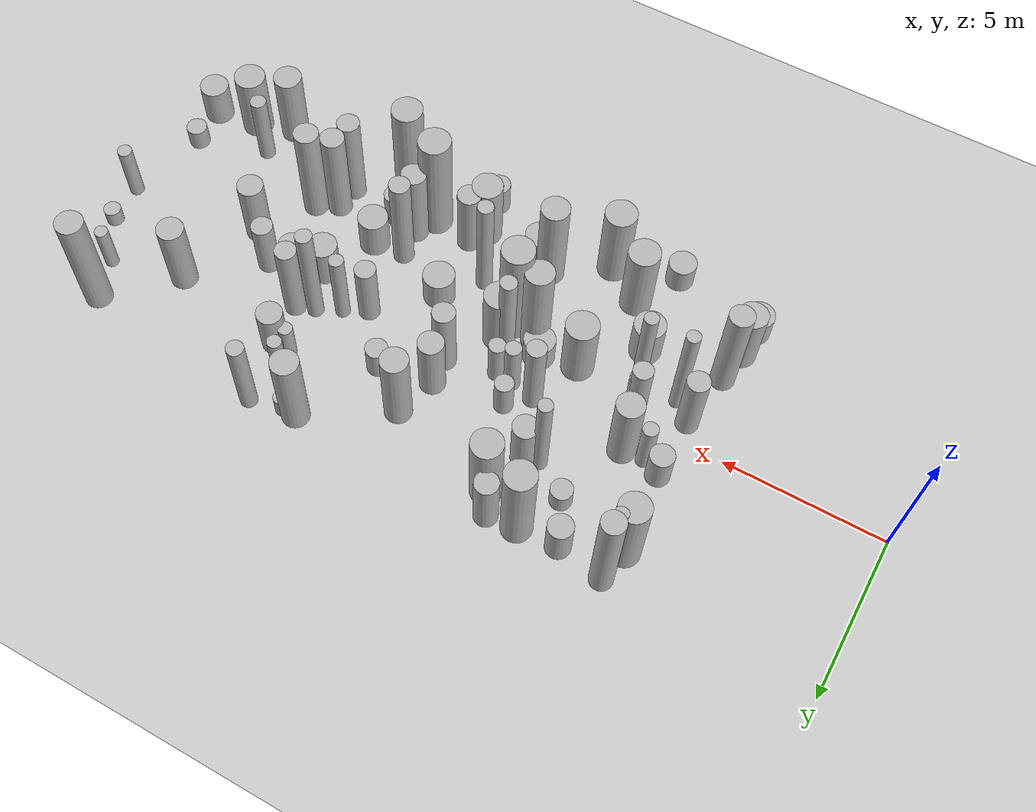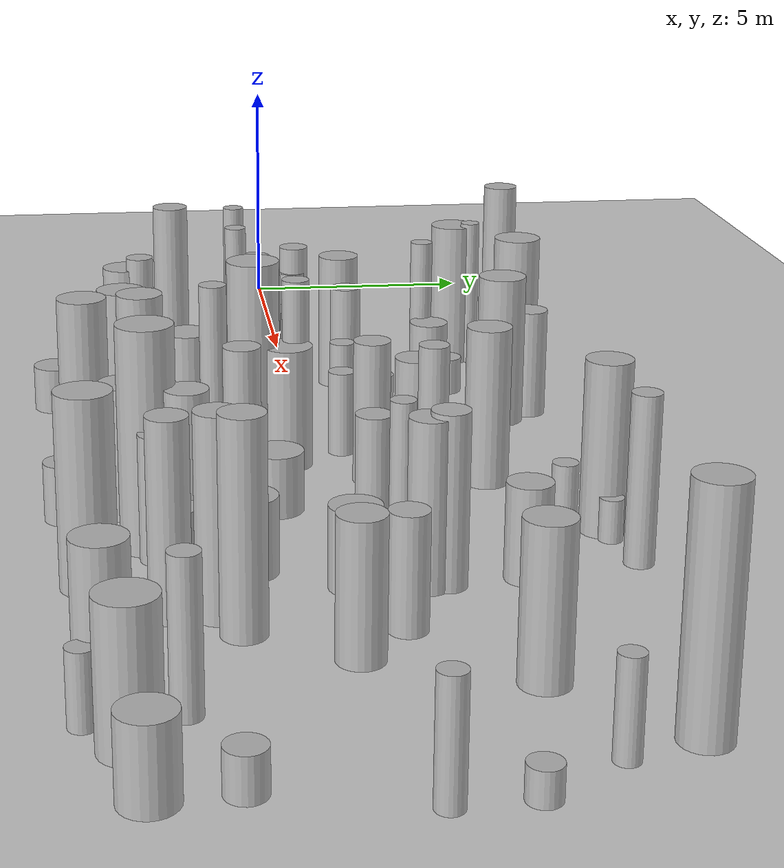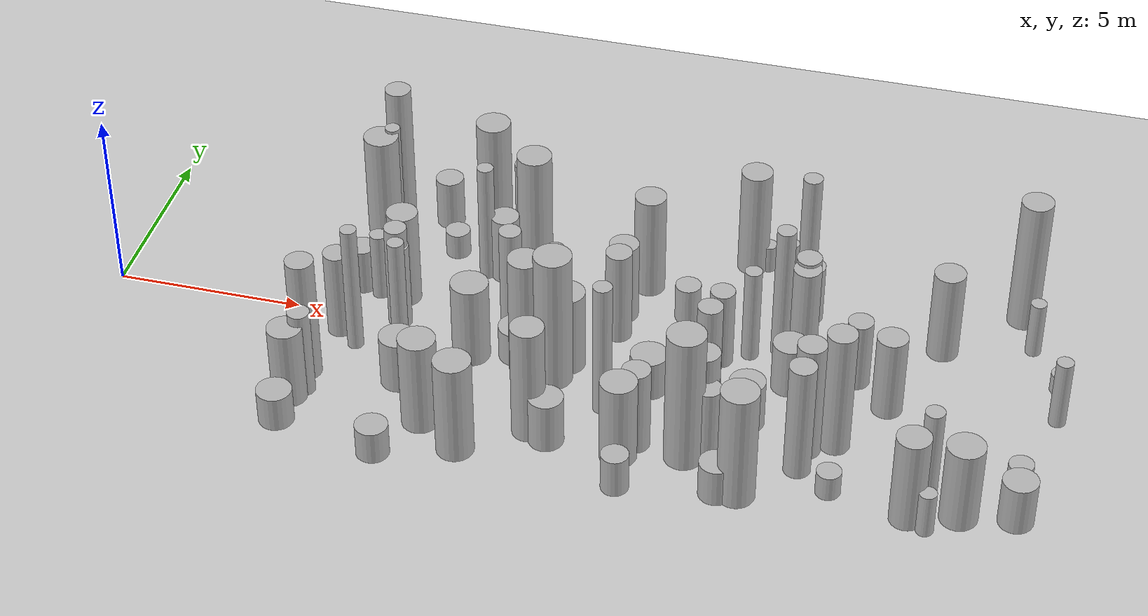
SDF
<sdf version="1.4">
 <world name="default">
  <include><uri>model://ground_plane</uri></include>
  <include><uri>model://sun</uri></include>
  <model name="forest">
   <static>true</static>
   <link name="cylinder5">
    <pose>6.095095211247049 -2.422346213950859 1.8108840715719619 0 0 0</pose>
    <visual name="visual">
     <geometry>
      <cylinder><radius>0.37031109077982693</radius><length>3.6217681431439237</length></cylinder>
     </geometry>
    </visual>
    <collision name="collision">
     <geometry>
      <cylinder><radius>0.37031109077982693</radius><length>3.6217681431439237</length></cylinder>
     </geometry>
     <max_contacts>0</max_contacts>
    </collision>
   </link>
   <link name="cylinder6">
    <pose>16.30455549652652 4.694991650789337 1.5752967482884006 0 0 0</pose>
    <visual name="visual">
     <geometry>
      <cylinder><radius>0.4186425243495191</radius><length>3.150593496576801</length></cylinder>
     </geometry>
    </visual>
    <collision name="collision">
     <geometry>
      <cylinder><radius>0.4186425243495191</radius><length>3.150593496576801</length></cylinder>
     </geometry>
     <max_contacts>0</max_contacts>
    </collision>
   </link>
   <link name="cylinder7">
    <pose>12.126960939428884 -0.2747560036739225 1.779856982656079 0 0 0</pose>
    <visual name="visual">
     <geometry>
      <cylinder><radius>0.2573544955763187</radius><length>3.559713965312158</length></cylinder>
     </geometry>
    </visual>
    <collision name="collision">
     <geometry>
      <cylinder><radius>0.2573544955763187</radius><length>3.559713965312158</length></cylinder>
     </geometry>
     <max_contacts>0</max_contacts>
    </collision>
   </link>
   <link name="cylinder18">
    <pose>9.476005156862094 2.567989246575573 1.771136329113 0 0 0</pose>
    <visual name="visual">
     <geometry><cylinder><radius>0.21846112876386714</radius><length>3.542272658226</length></cylinder></geometry>
    </visual>
    <collision name="collision">
     <geometry><cylinder><radius>0.21846112876386714</radius><length>3.542272658226</length></cylinder></geometry>
     <max_contacts>0</max_contacts>
    </collision>
   </link>
   <link name="cylinder20">
    <pose>9.98174227509422 -0.7284546494891488 1.1860617621199308 0 0 0</pose>
    <visual name="visual">
     <geometry>
      <cylinder><radius>0.4957982226751226</radius><length>2.3721235242398615</length></cylinder>
     </geometry>
    </visual>
    <collision name="collision">
     <geometry>
      <cylinder><radius>0.4957982226751226</radius><length>2.3721235242398615</length></cylinder>
     </geometry>
     <max_contacts>0</max_contacts>
    </collision>
   </link>
   <link name="cylinder22">
    <pose>17.75844524702019 4.9406119250586915 1.514483509496593 0 0 0</pose>
    <visual name="visual">
     <geometry>
      <cylinder><radius>0.2611316210934098</radius><length>3.028967018993186</length></cylinder>
     </geometry>
    </visual>
    <collision name="collision">
     <geometry>
      <cylinder><radius>0.2611316210934098</radius><length>3.028967018993186</length></cylinder>
     </geometry>
     <max_contacts>0</max_contacts>
    </collision>
   </link>
   <link name="cylinder24">
    <pose>16.97474772034049 1.04251455019953 1.388998019789471 0 0 0</pose>
    <visual name="visual">
     <geometry>
      <cylinder><radius>0.2256265079048133</radius><length>2.777996039578942</length></cylinder>
     </geometry>
    </visual>
    <collision name="collision">
     <geometry>
      <cylinder><radius>0.2256265079048133</radius><length>2.777996039578942</length></cylinder>
     </geometry>
     <max_contacts>0</max_contacts>
    </collision>
   </link>
   <link name="cylinder25">
    <pose>14.907421635599988 -3.0140926982769365 1.222793909276517 0 0 0</pose>
    <visual name="visual">
     <geometry>
      <cylinder><radius>0.3680840713682659</radius><length>2.445587818553034</length></cylinder>
     </geometry>
    </visual>
    <collision name="collision">
     <geometry>
      <cylinder><radius>0.3680840713682659</radius><length>2.445587818553034</length></cylinder>
     </geometry>
     <max_contacts>0</max_contacts>
    </collision>
   </link>
   <link name="cylinder29">
    <pose>18.137900436876656 2.9549398702739103 0.8520888014592398 0 0 0</pose>
    <visual name="visual">
     <geometry>
      <cylinder><radius>0.39659908892600876</radius><length>1.7041776029184796</length></cylinder>
     </geometry>
    </visual>
    <collision name="collision">
     <geometry>
      <cylinder><radius>0.39659908892600876</radius><length>1.7041776029184796</length></cylinder>
     </geometry>
     <max_contacts>0</max_contacts>
    </collision>
   </link>
   <link name="cylinder34">
    <pose>11.514855932610693 -0.9473922208191068 1.8160114090090107 0 0 0</pose>
    <visual name="visual">
     <geometry>
      <cylinder><radius>0.43567982473361944</radius><length>3.6320228180180214</length></cylinder>
     </geometry>
    </visual>
    <collision name="collision">
     <geometry>
      <cylinder><radius>0.43567982473361944</radius><length>3.6320228180180214</length></cylinder>
     </geometry>
     <max_contacts>0</max_contacts>
    </collision>
   </link>
   <link name="cylinder45">
    <pose>12.477127357572357 -0.45924616195239043 1.1842098432579775 0 0 0</pose>
    <visual name="visual">
     <geometry>
      <cylinder><radius>0.4751936288855037</radius><length>2.368419686515955</length></cylinder>
     </geometry>
    </visual>
    <collision name="collision">
     <geometry>
      <cylinder><radius>0.4751936288855037</radius><length>2.368419686515955</length></cylinder>
     </geometry>
     <max_contacts>0</max_contacts>
    </collision>
   </link>
   <link name="cylinder47">
    <pose>24.444030777441213 -3.407347500628516 0.6774231674197793 0 0 0</pose>
    <visual name="visual">
     <geometry>
      <cylinder><radius>0.44775015131962803</radius><length>1.3548463348395585</length></cylinder>
     </geometry>
    </visual>
    <collision name="collision">
     <geometry>
      <cylinder><radius>0.44775015131962803</radius><length>1.3548463348395585</length></cylinder>
     </geometry>
     <max_contacts>0</max_contacts>
    </collision>
   </link>
   <link name="cylinder52">
    <pose>7.635228746074446 1.0870725946404933 1.413383033654066 0 0 0</pose>
    <visual name="visual">
     <geometry>
      <cylinder><radius>0.41474855454471704</radius><length>2.826766067308132</length></cylinder>
     </geometry>
    </visual>
    <collision name="collision">
     <geometry>
      <cylinder><radius>0.41474855454471704</radius><length>2.826766067308132</length></cylinder>
     </geometry>
     <max_contacts>0</max_contacts>
    </collision>
   </link>
   <link name="cylinder54">
    <pose>16.28224763181415 0.6509675340185703 1.1512908590575814 0 0 0</pose>
    <visual name="visual">
     <geometry>
      <cylinder><radius>0.3228887253956194</radius><length>2.302581718115163</length></cylinder>
     </geometry>
    </visual>
    <collision name="collision">
     <geometry>
      <cylinder><radius>0.3228887253956194</radius><length>2.302581718115163</length></cylinder>
     </geometry>
     <max_contacts>0</max_contacts>
    </collision>
   </link>
   <link name="cylinder55">
    <pose>13.473698099883038 1.006953871160917 1.3632850253873994 0 0 0</pose>
    <visual name="visual">
     <geometry>
      <cylinder><radius>0.34761580975982925</radius><length>2.7265700507747987</length></cylinder>
     </geometry>
    </visual>
    <collision name="collision">
     <geometry>
      <cylinder><radius>0.34761580975982925</radius><length>2.7265700507747987</length></cylinder>
     </geometry>
     <max_contacts>0</max_contacts>
    </collision>
   </link>
   <link name="cylinder56">
    <pose>18.175802188430886 0.09654596366287116 0.7219304504183779 0 0 0</pose>
    <visual name="visual">
     <geometry>
      <cylinder><radius>0.45428353367251617</radius><length>1.4438609008367558</length></cylinder>
     </geometry>
    </visual>
    <collision name="collision">
     <geometry>
      <cylinder><radius>0.45428353367251617</radius><length>1.4438609008367558</length></cylinder>
     </geometry>
     <max_contacts>0</max_contacts>
    </collision>
   </link>
   <link name="cylinder58">
    <pose>9.955069784097688 2.6583486859823937 0.9913598653913777 0 0 0</pose>
    <visual name="visual">
     <geometry>
      <cylinder><radius>0.3821587422730991</radius><length>1.9827197307827553</length></cylinder>
     </geometry>
    </visual>
    <collision name="collision">
     <geometry>
      <cylinder><radius>0.3821587422730991</radius><length>1.9827197307827553</length></cylinder>
     </geometry>
     <max_contacts>0</max_contacts>
    </collision>
   </link>
   <link name="cylinder60">
    <pose>7.820291985153808 0.0696702242743763 1.2730377012281773 0 0 0</pose>
    <visual name="visual">
     <geometry>
      <cylinder><radius>0.29449439438048525</radius><length>2.5460754024563546</length></cylinder>
     </geometry>
    </visual>
    <collision name="collision">
     <geometry>
      <cylinder><radius>0.29449439438048525</radius><length>2.5460754024563546</length></cylinder>
     </geometry>
     <max_contacts>0</max_contacts>
    </collision>
   </link>
   <link name="cylinder62">
    <pose>6.194814364536061 3.8144096999039387 1.5415645126009914 0 0 0</pose>
    <visual name="visual">
     <geometry>
      <cylinder><radius>0.4681434991191864</radius><length>3.0831290252019827</length></cylinder>
     </geometry>
    </visual>
    <collision name="collision">
     <geometry>
      <cylinder><radius>0.4681434991191864</radius><length>3.0831290252019827</length></cylinder>
     </geometry>
     <max_contacts>0</max_contacts>
    </collision>
   </link>
   <link name="cylinder71">
    <pose>11.935221255808806 0.6405763827183133 0.826655675524236 0 0 0</pose>
    <visual name="visual">
     <geometry>
      <cylinder><radius>0.2604943909857404</radius><length>1.653311351048472</length></cylinder>
     </geometry>
    </visual>
    <collision name="collision">
     <geometry>
      <cylinder><radius>0.2604943909857404</radius><length>1.653311351048472</length></cylinder>
     </geometry>
     <max_contacts>0</max_contacts>
    </collision>
   </link>
   <link name="cylinder72">
    <pose>12.205963857380482 -3.213685060846325 1.6967089766937846 0 0 0</pose>
    <visual name="visual">
     <geometry>
      <cylinder><radius>0.4337033851453723</radius><length>3.3934179533875692</length></cylinder>
     </geometry>
    </visual>
    <collision name="collision">
     <geometry>
      <cylinder><radius>0.4337033851453723</radius><length>3.3934179533875692</length></cylinder>
     </geometry>
     <max_contacts>0</max_contacts>
    </collision>
   </link>
   <link name="cylinder73">
    <pose>15.072860414491757 2.146677233310906 0.5403019122151448 0 0 0</pose>
    <visual name="visual">
     <geometry>
      <cylinder><radius>0.34055995838630576</radius><length>1.0806038244302896</length></cylinder>
     </geometry>
    </visual>
    <collision name="collision">
     <geometry>
      <cylinder><radius>0.34055995838630576</radius><length>1.0806038244302896</length></cylinder>
     </geometry>
     <max_contacts>0</max_contacts>
    </collision>
   </link>
   <link name="cylinder77">
    <pose>6.413894477884785 4.16249851608033 1.5841606587794075 0 0 0</pose>
    <visual name="visual">
     <geometry>
      <cylinder><radius>0.20335564849784107</radius><length>3.168321317558815</length></cylinder>
     </geometry>
    </visual>
    <collision name="collision">
     <geometry>
      <cylinder><radius>0.20335564849784107</radius><length>3.168321317558815</length></cylinder>
     </geometry>
     <max_contacts>0</max_contacts>
    </collision>
   </link>
   <link name="cylinder80">
    <pose>18.984623782332037 -2.931461088920048 1.6807927914078105 0 0 0</pose>
    <visual name="visual">
     <geometry>
      <cylinder><radius>0.3454384419791381</radius><length>3.361585582815621</length></cylinder>
     </geometry>
    </visual>
    <collision name="collision">
     <geometry>
      <cylinder><radius>0.3454384419791381</radius><length>3.361585582815621</length></cylinder>
     </geometry>
     <max_contacts>0</max_contacts>
    </collision>
   </link>
   <link name="cylinder81">
    <pose>11.259170685666504 1.459962182327608 0.6680011993114968 0 0 0</pose>
    <visual name="visual">
     <geometry>
      <cylinder><radius>0.2894031104982382</radius><length>1.3360023986229936</length></cylinder>
     </geometry>
    </visual>
    <collision name="collision">
     <geometry>
      <cylinder><radius>0.2894031104982382</radius><length>1.3360023986229936</length></cylinder>
     </geometry>
     <max_contacts>0</max_contacts>
    </collision>
   </link>
   <link name="cylinder86">
    <pose>7.76864987697671 0.11340664307148973 1.5410273927857283 0 0 0</pose>
    <visual name="visual">
     <geometry>
      <cylinder><radius>0.29703365670510856</radius><length>3.0820547855714566</length></cylinder>
     </geometry>
    </visual>
    <collision name="collision">
     <geometry>
      <cylinder><radius>0.29703365670510856</radius><length>3.0820547855714566</length></cylinder>
     </geometry>
     <max_contacts>0</max_contacts>
    </collision>
   </link>
   <link name="cylinder88">
    <pose>6.953928481721544 1.0564743337878815 0.9945678353152073 0 0 0</pose>
    <visual name="visual">
     <geometry>
      <cylinder><radius>0.2310721976853025</radius><length>1.9891356706304146</length></cylinder>
     </geometry>
    </visual>
    <collision name="collision">
     <geometry>
      <cylinder><radius>0.2310721976853025</radius><length>1.9891356706304146</length></cylinder>
     </geometry>
     <max_contacts>0</max_contacts>
    </collision>
   </link>
   <link name="cylinder91">
    <pose>10.020918655173524 4.733958965947425 1.101997239881362 0 0 0</pose>
    <visual name="visual">
     <geometry>
      <cylinder><radius>0.35770249806429677</radius><length>2.203994479762724</length></cylinder>
     </geometry>
    </visual>
    <collision name="collision">
     <geometry>
      <cylinder><radius>0.35770249806429677</radius><length>2.203994479762724</length></cylinder>
     </geometry>
     <max_contacts>0</max_contacts>
    </collision>
   </link>
   <link name="cylinder93">
    <pose>24.363349281199035 -2.141585468703803 0.3630129723596617 0 0 0</pose>
    <visual name="visual">
     <geometry>
      <cylinder><radius>0.32144948191967604</radius><length>0.7260259447193234</length></cylinder>
     </geometry>
    </visual>
    <collision name="collision">
     <geometry>
      <cylinder><radius>0.32144948191967604</radius><length>0.7260259447193234</length></cylinder>
     </geometry>
     <max_contacts>0</max_contacts>
    </collision>
   </link>
   <link name="cylinder94">
    <pose>14.59632104710699 -3.5574351839239817 1.2246605211665234 0 0 0</pose>
    <visual name="visual">
     <geometry>
      <cylinder><radius>0.4727323777549436</radius><length>2.4493210423330467</length></cylinder>
     </geometry>
    </visual>
    <collision name="collision">
     <geometry>
      <cylinder><radius>0.4727323777549436</radius><length>2.4493210423330467</length></cylinder>
     </geometry>
     <max_contacts>0</max_contacts>
    </collision>
   </link>
   <link name="cylinder100">
    <pose>21.79026027068656 2.4040399199974267 1.3128624766107848 0 0 0</pose>
    <visual name="visual">
     <geometry>
      <cylinder><radius>0.41262244928697367</radius><length>2.6257249532215696</length></cylinder>
     </geometry>
    </visual>
    <collision name="collision">
     <geometry>
      <cylinder><radius>0.41262244928697367</radius><length>2.6257249532215696</length></cylinder>
     </geometry>
     <max_contacts>0</max_contacts>
    </collision>
   </link>
   <link name="cylinder101">
    <pose>16.725000073413064 4.726812696943254 0.3930370585745492 0 0 0</pose>
    <visual name="visual">
     <geometry>
      <cylinder><radius>0.21585638595452783</radius><length>0.7860741171490984</length></cylinder>
     </geometry>
    </visual>
    <collision name="collision">
     <geometry>
      <cylinder><radius>0.21585638595452783</radius><length>0.7860741171490984</length></cylinder>
     </geometry>
     <max_contacts>0</max_contacts>
    </collision>
   </link>
   <link name="cylinder107">
    <pose>22.362124173434076 -4.273962364493391 0.6202239476008679 0 0 0</pose>
    <visual name="visual">
     <geometry>
      <cylinder><radius>0.22353060133361566</radius><length>1.2404478952017357</length></cylinder>
     </geometry>
    </visual>
    <collision name="collision">
     <geometry>
      <cylinder><radius>0.22353060133361566</radius><length>1.2404478952017357</length></cylinder>
     </geometry>
     <max_contacts>0</max_contacts>
    </collision>
   </link>
   <link name="cylinder112">
    <pose>17.714094984033686 -4.208545095321168 1.6892750254725173 0 0 0</pose>
    <visual name="visual">
     <geometry>
      <cylinder><radius>0.48277260561146285</radius><length>3.3785500509450346</length></cylinder>
     </geometry>
    </visual>
    <collision name="collision">
     <geometry>
      <cylinder><radius>0.48277260561146285</radius><length>3.3785500509450346</length></cylinder>
     </geometry>
     <max_contacts>0</max_contacts>
    </collision>
   </link>
   <link name="cylinder114">
    <pose>14.73947819506111 -0.871426910909971 0.5690008042410633 0 0 0</pose>
    <visual name="visual">
     <geometry>
      <cylinder><radius>0.4882314417916178</radius><length>1.1380016084821265</length></cylinder>
     </geometry>
    </visual>
    <collision name="collision">
     <geometry>
      <cylinder><radius>0.4882314417916178</radius><length>1.1380016084821265</length></cylinder>
     </geometry>
     <max_contacts>0</max_contacts>
    </collision>
   </link>
   <link name="cylinder115">
    <pose>23.650555311760655 4.222245593308173 1.952991685077645 0 0 0</pose>
    <visual name="visual">
     <geometry><cylinder><radius>0.4188508256416723</radius><length>3.90598337015529</length></cylinder></geometry>
    </visual>
    <collision name="collision">
     <geometry><cylinder><radius>0.4188508256416723</radius><length>3.90598337015529</length></cylinder></geometry>
     <max_contacts>0</max_contacts>
    </collision>
   </link>
   <link name="cylinder119">
    <pose>10.617664862403963 0.8633951272851901 1.4787149187519995 0 0 0</pose>
    <visual name="visual">
     <geometry>
      <cylinder><radius>0.2950980467322818</radius><length>2.957429837503999</length></cylinder>
     </geometry>
    </visual>
    <collision name="collision">
     <geometry>
      <cylinder><radius>0.2950980467322818</radius><length>2.957429837503999</length></cylinder>
     </geometry>
     <max_contacts>0</max_contacts>
    </collision>
   </link>
   <link name="cylinder121">
    <pose>24.06725412369243 3.0075828474657325 0.808634316648214 0 0 0</pose>
    <visual name="visual">
     <geometry>
      <cylinder><radius>0.20704327051777724</radius><length>1.617268633296428</length></cylinder>
     </geometry>
    </visual>
    <collision name="collision">
     <geometry>
      <cylinder><radius>0.20704327051777724</radius><length>1.617268633296428</length></cylinder>
     </geometry>
     <max_contacts>0</max_contacts>
    </collision>
   </link>
   <link name="cylinder125">
    <pose>8.430540704154922 3.2966365214004636 0.37361929706111635 0 0 0</pose>
    <visual name="visual">
     <geometry>
      <cylinder><radius>0.33373765676527517</radius><length>0.7472385941222327</length></cylinder>
     </geometry>
    </visual>
    <collision name="collision">
     <geometry>
      <cylinder><radius>0.33373765676527517</radius><length>0.7472385941222327</length></cylinder>
     </geometry>
     <max_contacts>0</max_contacts>
    </collision>
   </link>
   <link name="cylinder136">
    <pose>17.41087176538111 -1.5399672578126444 0.6890771006385732 0 0 0</pose>
    <visual name="visual">
     <geometry>
      <cylinder><radius>0.4661648971530874</radius><length>1.3781542012771464</length></cylinder>
     </geometry>
    </visual>
    <collision name="collision">
     <geometry>
      <cylinder><radius>0.4661648971530874</radius><length>1.3781542012771464</length></cylinder>
     </geometry>
     <max_contacts>0</max_contacts>
    </collision>
   </link>
   <link name="cylinder138">
    <pose>16.72779543883754 -3.0232231503549176 1.1277692337278507 0 0 0</pose>
    <visual name="visual">
     <geometry>
      <cylinder><radius>0.3426262743049727</radius><length>2.2555384674557013</length></cylinder>
     </geometry>
    </visual>
    <collision name="collision">
     <geometry>
      <cylinder><radius>0.3426262743049727</radius><length>2.2555384674557013</length></cylinder>
     </geometry>
     <max_contacts>0</max_contacts>
    </collision>
   </link>
   <link name="cylinder139">
    <pose>5.928597815488672 -4.371160423852059 0.49105254325958536 0 0 0</pose>
    <visual name="visual">
     <geometry>
      <cylinder><radius>0.46107381835458205</radius><length>0.9821050865191707</length></cylinder>
     </geometry>
    </visual>
    <collision name="collision">
     <geometry>
      <cylinder><radius>0.46107381835458205</radius><length>0.9821050865191707</length></cylinder>
     </geometry>
     <max_contacts>0</max_contacts>
    </collision>
   </link>
   <link name="cylinder142">
    <pose>19.83549147415765 0.7003771159021897 1.002906774504372 0 0 0</pose>
    <visual name="visual">
     <geometry>
      <cylinder><radius>0.3325069114470519</radius><length>2.005813549008744</length></cylinder>
     </geometry>
    </visual>
    <collision name="collision">
     <geometry>
      <cylinder><radius>0.3325069114470519</radius><length>2.005813549008744</length></cylinder>
     </geometry>
     <max_contacts>0</max_contacts>
    </collision>
   </link>
   <link name="cylinder147">
    <pose>14.783060450838654 -4.658562817335564 0.5446399969134892 0 0 0</pose>
    <visual name="visual">
     <geometry>
      <cylinder><radius>0.35485535696661163</radius><length>1.0892799938269784</length></cylinder>
     </geometry>
    </visual>
    <collision name="collision">
     <geometry>
      <cylinder><radius>0.35485535696661163</radius><length>1.0892799938269784</length></cylinder>
     </geometry>
     <max_contacts>0</max_contacts>
    </collision>
   </link>
   <link name="cylinder151">
    <pose>17.703965323361196 1.4086419687044245 1.9707846493334542 0 0 0</pose>
    <visual name="visual">
     <geometry>
      <cylinder><radius>0.25053449521472776</radius><length>3.9415692986669084</length></cylinder>
     </geometry>
    </visual>
    <collision name="collision">
     <geometry>
      <cylinder><radius>0.25053449521472776</radius><length>3.9415692986669084</length></cylinder>
     </geometry>
     <max_contacts>0</max_contacts>
    </collision>
   </link>
   <link name="cylinder155">
    <pose>16.17185217414024 -3.1915605363336774 1.993506848823045 0 0 0</pose>
    <visual name="visual">
     <geometry>
      <cylinder><radius>0.49777641467315165</radius><length>3.98701369764609</length></cylinder>
     </geometry>
    </visual>
    <collision name="collision">
     <geometry>
      <cylinder><radius>0.49777641467315165</radius><length>3.98701369764609</length></cylinder>
     </geometry>
     <max_contacts>0</max_contacts>
    </collision>
   </link>
   <link name="cylinder158">
    <pose>17.355124682220378 -2.691075064879401 0.5984140685225526 0 0 0</pose>
    <visual name="visual">
     <geometry>
      <cylinder><radius>0.32549453195601175</radius><length>1.1968281370451053</length></cylinder>
     </geometry>
    </visual>
    <collision name="collision">
     <geometry>
      <cylinder><radius>0.32549453195601175</radius><length>1.1968281370451053</length></cylinder>
     </geometry>
     <max_contacts>0</max_contacts>
    </collision>
   </link>
   <link name="cylinder160">
    <pose>9.106030623597867 4.629427794935223 1.7441170345791965 0 0 0</pose>
    <visual name="visual">
     <geometry>
      <cylinder><radius>0.4650968523315287</radius><length>3.488234069158393</length></cylinder>
     </geometry>
    </visual>
    <collision name="collision">
     <geometry>
      <cylinder><radius>0.4650968523315287</radius><length>3.488234069158393</length></cylinder>
     </geometry>
     <max_contacts>0</max_contacts>
    </collision>
   </link>
   <link name="cylinder162">
    <pose>11.137042698542864 -0.4760692714361978 0.492413411440775 0 0 0</pose>
    <visual name="visual">
     <geometry><cylinder><radius>0.4784504244859102</radius><length>0.98482682288155</length></cylinder></geometry>
    </visual>
    <collision name="collision">
     <geometry><cylinder><radius>0.4784504244859102</radius><length>0.98482682288155</length></cylinder></geometry>
     <max_contacts>0</max_contacts>
    </collision>
   </link>
   <link name="cylinder165">
    <pose>22.210303059068316 -2.816200225347817 1.265347530044873 0 0 0</pose>
    <visual name="visual">
     <geometry>
      <cylinder><radius>0.24997605432596307</radius><length>2.530695060089746</length></cylinder>
     </geometry>
    </visual>
    <collision name="collision">
     <geometry>
      <cylinder><radius>0.24997605432596307</radius><length>2.530695060089746</length></cylinder>
     </geometry>
     <max_contacts>0</max_contacts>
    </collision>
   </link>
   <link name="cylinder169">
    <pose>19.058926050457067 -2.1772217234440463 1.7200616102084276 0 0 0</pose>
    <visual name="visual">
     <geometry>
      <cylinder><radius>0.3700004770030304</radius><length>3.4401232204168553</length></cylinder>
     </geometry>
    </visual>
    <collision name="collision">
     <geometry>
      <cylinder><radius>0.3700004770030304</radius><length>3.4401232204168553</length></cylinder>
     </geometry>
     <max_contacts>0</max_contacts>
    </collision>
   </link>
   <link name="cylinder170">
    <pose>11.392280214993903 0.7121823771755693 1.031718018173375 0 0 0</pose>
    <visual name="visual">
     <geometry>
      <cylinder><radius>0.24428875497168814</radius><length>2.06343603634675</length></cylinder>
     </geometry>
    </visual>
    <collision name="collision">
     <geometry>
      <cylinder><radius>0.24428875497168814</radius><length>2.06343603634675</length></cylinder>
     </geometry>
     <max_contacts>0</max_contacts>
    </collision>
   </link>
   <link name="cylinder171">
    <pose>7.8453561889897045 4.568394783766438 0.7359606249526207 0 0 0</pose>
    <visual name="visual">
     <geometry>
      <cylinder><radius>0.3772672522836692</radius><length>1.4719212499052414</length></cylinder>
     </geometry>
    </visual>
    <collision name="collision">
     <geometry>
      <cylinder><radius>0.3772672522836692</radius><length>1.4719212499052414</length></cylinder>
     </geometry>
     <max_contacts>0</max_contacts>
    </collision>
   </link>
   <link name="cylinder172">
    <pose>18.29268270184177 1.6007866817433216 1.5208422594432358 0 0 0</pose>
    <visual name="visual">
     <geometry>
      <cylinder><radius>0.3267907292941251</radius><length>3.0416845188864716</length></cylinder>
     </geometry>
    </visual>
    <collision name="collision">
     <geometry>
      <cylinder><radius>0.3267907292941251</radius><length>3.0416845188864716</length></cylinder>
     </geometry>
     <max_contacts>0</max_contacts>
    </collision>
   </link>
   <link name="cylinder173">
    <pose>12.283306278011267 -1.0915960301516847 1.9930517255333897 0 0 0</pose>
    <visual name="visual">
     <geometry>
      <cylinder><radius>0.49306756155228837</radius><length>3.9861034510667794</length></cylinder>
     </geometry>
    </visual>
    <collision name="collision">
     <geometry>
      <cylinder><radius>0.49306756155228837</radius><length>3.9861034510667794</length></cylinder>
     </geometry>
     <max_contacts>0</max_contacts>
    </collision>
   </link>
   <link name="cylinder176">
    <pose>24.993309181602868 0.42629420101194704 0.9908706481547799 0 0 0</pose>
    <visual name="visual">
     <geometry>
      <cylinder><radius>0.22065721093687454</radius><length>1.9817412963095598</length></cylinder>
     </geometry>
    </visual>
    <collision name="collision">
     <geometry>
      <cylinder><radius>0.22065721093687454</radius><length>1.9817412963095598</length></cylinder>
     </geometry>
     <max_contacts>0</max_contacts>
    </collision>
   </link>
   <link name="cylinder179">
    <pose>9.47161760066961 -3.551999276072727 1.3613105673191104 0 0 0</pose>
    <visual name="visual">
     <geometry>
      <cylinder><radius>0.48212963613260773</radius><length>2.7226211346382208</length></cylinder>
     </geometry>
    </visual>
    <collision name="collision">
     <geometry>
      <cylinder><radius>0.48212963613260773</radius><length>2.7226211346382208</length></cylinder>
     </geometry>
     <max_contacts>0</max_contacts>
    </collision>
   </link>
   <link name="cylinder180">
    <pose>17.47515952377374 3.6944346375494277 0.8762366837959024 0 0 0</pose>
    <visual name="visual">
     <geometry>
      <cylinder><radius>0.22337278256000098</radius><length>1.7524733675918047</length></cylinder>
     </geometry>
    </visual>
    <collision name="collision">
     <geometry>
      <cylinder><radius>0.22337278256000098</radius><length>1.7524733675918047</length></cylinder>
     </geometry>
     <max_contacts>0</max_contacts>
    </collision>
   </link>
   <link name="cylinder187">
    <pose>6.949204445497003 -1.1019543122992772 1.883813012745473 0 0 0</pose>
    <visual name="visual">
     <geometry>
      <cylinder><radius>0.2118267536184284</radius><length>3.767626025490946</length></cylinder>
     </geometry>
    </visual>
    <collision name="collision">
     <geometry>
      <cylinder><radius>0.2118267536184284</radius><length>3.767626025490946</length></cylinder>
     </geometry>
     <max_contacts>0</max_contacts>
    </collision>
   </link>
   <link name="cylinder188">
    <pose>16.411795374850605 -1.5960920819563205 1.808276473498943 0 0 0</pose>
    <visual name="visual">
     <geometry>
      <cylinder><radius>0.3200801589117034</radius><length>3.616552946997886</length></cylinder>
     </geometry>
    </visual>
    <collision name="collision">
     <geometry>
      <cylinder><radius>0.3200801589117034</radius><length>3.616552946997886</length></cylinder>
     </geometry>
     <max_contacts>0</max_contacts>
    </collision>
   </link>
   <link name="cylinder189">
    <pose>6.389596413975283 4.82437941239815 1.9857879951864987 0 0 0</pose>
    <visual name="visual">
     <geometry>
      <cylinder><radius>0.35065174397491605</radius><length>3.9715759903729975</length></cylinder>
     </geometry>
    </visual>
    <collision name="collision">
     <geometry>
      <cylinder><radius>0.35065174397491605</radius><length>3.9715759903729975</length></cylinder>
     </geometry>
     <max_contacts>0</max_contacts>
    </collision>
   </link>
   <link name="cylinder193">
    <pose>18.316593997413413 1.2727121483798847 1.474366486172269 0 0 0</pose>
    <visual name="visual">
     <geometry>
      <cylinder><radius>0.3642726159244248</radius><length>2.948732972344538</length></cylinder>
     </geometry>
    </visual>
    <collision name="collision">
     <geometry>
      <cylinder><radius>0.3642726159244248</radius><length>2.948732972344538</length></cylinder>
     </geometry>
     <max_contacts>0</max_contacts>
    </collision>
   </link>
   <link name="cylinder194">
    <pose>13.409777048007754 1.838318977817071 1.1772396014712765 0 0 0</pose>
    <visual name="visual">
     <geometry>
      <cylinder><radius>0.39156945059190373</radius><length>2.354479202942553</length></cylinder>
     </geometry>
    </visual>
    <collision name="collision">
     <geometry>
      <cylinder><radius>0.39156945059190373</radius><length>2.354479202942553</length></cylinder>
     </geometry>
     <max_contacts>0</max_contacts>
    </collision>
   </link>
   <link name="cylinder195">
    <pose>23.08768022275565 -3.625416886081163 1.175607075304224 0 0 0</pose>
    <visual name="visual">
     <geometry>
      <cylinder><radius>0.48258783765063723</radius><length>2.351214150608448</length></cylinder>
     </geometry>
    </visual>
    <collision name="collision">
     <geometry>
      <cylinder><radius>0.48258783765063723</radius><length>2.351214150608448</length></cylinder>
     </geometry>
     <max_contacts>0</max_contacts>
    </collision>
   </link>
   <link name="cylinder198">
    <pose>16.513481416828327 -2.530467563090051 1.4729927831628435 0 0 0</pose>
    <visual name="visual">
     <geometry>
      <cylinder><radius>0.3846966001925235</radius><length>2.945985566325687</length></cylinder>
     </geometry>
    </visual>
    <collision name="collision">
     <geometry>
      <cylinder><radius>0.3846966001925235</radius><length>2.945985566325687</length></cylinder>
     </geometry>
     <max_contacts>0</max_contacts>
    </collision>
   </link>
   <link name="cylinder201">
    <pose>10.389222418019038 4.069676755916197 1.5165966292018986 0 0 0</pose>
    <visual name="visual">
     <geometry>
      <cylinder><radius>0.47028961405053127</radius><length>3.0331932584037973</length></cylinder>
     </geometry>
    </visual>
    <collision name="collision">
     <geometry>
      <cylinder><radius>0.47028961405053127</radius><length>3.0331932584037973</length></cylinder>
     </geometry>
     <max_contacts>0</max_contacts>
    </collision>
   </link>
   <link name="cylinder207">
    <pose>8.2032915543086 -1.1424904653649182 1.8166352316568655 0 0 0</pose>
    <visual name="visual">
     <geometry>
      <cylinder><radius>0.2161977217317728</radius><length>3.633270463313731</length></cylinder>
     </geometry>
    </visual>
    <collision name="collision">
     <geometry>
      <cylinder><radius>0.2161977217317728</radius><length>3.633270463313731</length></cylinder>
     </geometry>
     <max_contacts>0</max_contacts>
    </collision>
   </link>
   <link name="cylinder208">
    <pose>6.404050966814683 1.2869140553382552 0.6639661919967056 0 0 0</pose>
    <visual name="visual">
     <geometry>
      <cylinder><radius>0.3654160433507157</radius><length>1.3279323839934112</length></cylinder>
     </geometry>
    </visual>
    <collision name="collision">
     <geometry>
      <cylinder><radius>0.3654160433507157</radius><length>1.3279323839934112</length></cylinder>
     </geometry>
     <max_contacts>0</max_contacts>
    </collision>
   </link>
   <link name="cylinder214">
    <pose>12.714095710979429 -3.4314935596764973 0.7156257892500459 0 0 0</pose>
    <visual name="visual">
     <geometry>
      <cylinder><radius>0.4549132273884628</radius><length>1.4312515785000919</length></cylinder>
     </geometry>
    </visual>
    <collision name="collision">
     <geometry>
      <cylinder><radius>0.4549132273884628</radius><length>1.4312515785000919</length></cylinder>
     </geometry>
     <max_contacts>0</max_contacts>
    </collision>
   </link>
   <link name="cylinder218">
    <pose>17.224700225443165 -4.26657971871651 0.5244888720298689 0 0 0</pose>
    <visual name="visual">
     <geometry>
      <cylinder><radius>0.4412001976763659</radius><length>1.0489777440597379</length></cylinder>
     </geometry>
    </visual>
    <collision name="collision">
     <geometry>
      <cylinder><radius>0.4412001976763659</radius><length>1.0489777440597379</length></cylinder>
     </geometry>
     <max_contacts>0</max_contacts>
    </collision>
   </link>
   <link name="cylinder226">
    <pose>13.802096039680336 3.12127016007903 1.5133803529893965 0 0 0</pose>
    <visual name="visual">
     <geometry>
      <cylinder><radius>0.41680518627359053</radius><length>3.026760705978793</length></cylinder>
     </geometry>
    </visual>
    <collision name="collision">
     <geometry>
      <cylinder><radius>0.41680518627359053</radius><length>3.026760705978793</length></cylinder>
     </geometry>
     <max_contacts>0</max_contacts>
    </collision>
   </link>
   <link name="cylinder227">
    <pose>10.61441661644163 -4.322046088658377 1.4476749852910429 0 0 0</pose>
    <visual name="visual">
     <geometry>
      <cylinder><radius>0.48503570931149814</radius><length>2.8953499705820858</length></cylinder>
     </geometry>
    </visual>
    <collision name="collision">
     <geometry>
      <cylinder><radius>0.48503570931149814</radius><length>2.8953499705820858</length></cylinder>
     </geometry>
     <max_contacts>0</max_contacts>
    </collision>
   </link>
   <link name="cylinder231">
    <pose>17.61532444335586 2.9979458966051844 0.6674262094101893 0 0 0</pose>
    <visual name="visual">
     <geometry>
      <cylinder><radius>0.22217585995758016</radius><length>1.3348524188203785</length></cylinder>
     </geometry>
    </visual>
    <collision name="collision">
     <geometry>
      <cylinder><radius>0.22217585995758016</radius><length>1.3348524188203785</length></cylinder>
     </geometry>
     <max_contacts>0</max_contacts>
    </collision>
   </link>
   <link name="cylinder232">
    <pose>24.916628811432716 1.678124355619719 0.2770863811403646 0 0 0</pose>
    <visual name="visual">
     <geometry>
      <cylinder><radius>0.2654479401590413</radius><length>0.5541727622807292</length></cylinder>
     </geometry>
    </visual>
    <collision name="collision">
     <geometry>
      <cylinder><radius>0.2654479401590413</radius><length>0.5541727622807292</length></cylinder>
     </geometry>
     <max_contacts>0</max_contacts>
    </collision>
   </link>
   <link name="cylinder234">
    <pose>21.874130654860544 -3.9729047419730943 1.3293861373426585 0 0 0</pose>
    <visual name="visual">
     <geometry>
      <cylinder><radius>0.4374006495233046</radius><length>2.658772274685317</length></cylinder>
     </geometry>
    </visual>
    <collision name="collision">
     <geometry>
      <cylinder><radius>0.4374006495233046</radius><length>2.658772274685317</length></cylinder>
     </geometry>
     <max_contacts>0</max_contacts>
    </collision>
   </link>
   <link name="cylinder235">
    <pose>8.48818432400492 -2.193103163277047 0.7479414351796617 0 0 0</pose>
    <visual name="visual">
     <geometry>
      <cylinder><radius>0.4828133468593484</radius><length>1.4958828703593234</length></cylinder>
     </geometry>
    </visual>
    <collision name="collision">
     <geometry>
      <cylinder><radius>0.4828133468593484</radius><length>1.4958828703593234</length></cylinder>
     </geometry>
     <max_contacts>0</max_contacts>
    </collision>
   </link>
   <link name="cylinder237">
    <pose>20.75940956168799 -0.15547243393223908 1.185119665308598 0 0 0</pose>
    <visual name="visual">
     <geometry>
      <cylinder><radius>0.39896267581457523</radius><length>2.370239330617196</length></cylinder>
     </geometry>
    </visual>
    <collision name="collision">
     <geometry>
      <cylinder><radius>0.39896267581457523</radius><length>2.370239330617196</length></cylinder>
     </geometry>
     <max_contacts>0</max_contacts>
    </collision>
   </link>
   <link name="cylinder238">
    <pose>5.969383601734663 -3.4599314809056123 1.1304498644126217 0 0 0</pose>
    <visual name="visual">
     <geometry>
      <cylinder><radius>0.45275219968051256</radius><length>2.2608997288252435</length></cylinder>
     </geometry>
    </visual>
    <collision name="collision">
     <geometry>
      <cylinder><radius>0.45275219968051256</radius><length>2.2608997288252435</length></cylinder>
     </geometry>
     <max_contacts>0</max_contacts>
    </collision>
   </link>
   <link name="cylinder240">
    <pose>13.777806185832233 -1.9263876649522595 1.978553475502003 0 0 0</pose>
    <visual name="visual">
     <geometry>
      <cylinder><radius>0.24685687774184195</radius><length>3.957106951004006</length></cylinder>
     </geometry>
    </visual>
    <collision name="collision">
     <geometry>
      <cylinder><radius>0.24685687774184195</radius><length>3.957106951004006</length></cylinder>
     </geometry>
     <max_contacts>0</max_contacts>
    </collision>
   </link>
   <link name="cylinder242">
    <pose>19.72631684888563 -1.8283464952390038 1.8162441203724387 0 0 0</pose>
    <visual name="visual">
     <geometry>
      <cylinder><radius>0.3819868430268823</radius><length>3.6324882407448773</length></cylinder>
     </geometry>
    </visual>
    <collision name="collision">
     <geometry>
      <cylinder><radius>0.3819868430268823</radius><length>3.6324882407448773</length></cylinder>
     </geometry>
     <max_contacts>0</max_contacts>
    </collision>
   </link>
   <link name="cylinder244">
    <pose>6.238687691655958 -3.1133680934872943 1.2708419450109019 0 0 0</pose>
    <visual name="visual">
     <geometry>
      <cylinder><radius>0.28866513388179027</radius><length>2.5416838900218037</length></cylinder>
     </geometry>
    </visual>
    <collision name="collision">
     <geometry>
      <cylinder><radius>0.28866513388179027</radius><length>2.5416838900218037</length></cylinder>
     </geometry>
     <max_contacts>0</max_contacts>
    </collision>
   </link>
   <link name="cylinder245">
    <pose>8.666506845089714 -4.9476519900231795 0.46261399273928683 0 0 0</pose>
    <visual name="visual">
     <geometry>
      <cylinder><radius>0.42533121268704216</radius><length>0.9252279854785737</length></cylinder>
     </geometry>
    </visual>
    <collision name="collision">
     <geometry>
      <cylinder><radius>0.42533121268704216</radius><length>0.9252279854785737</length></cylinder>
     </geometry>
     <max_contacts>0</max_contacts>
    </collision>
   </link>
   <link name="cylinder246">
    <pose>6.381317099764168 -0.6128681620049345 1.270010567467689 0 0 0</pose>
    <visual name="visual">
     <geometry>
      <cylinder><radius>0.34268635532880837</radius><length>2.540021134935378</length></cylinder>
     </geometry>
    </visual>
    <collision name="collision">
     <geometry>
      <cylinder><radius>0.34268635532880837</radius><length>2.540021134935378</length></cylinder>
     </geometry>
     <max_contacts>0</max_contacts>
    </collision>
   </link>
   <link name="cylinder247">
    <pose>19.866939884872956 -3.5288602875954878 0.3496608697469294 0 0 0</pose>
    <visual name="visual">
     <geometry>
      <cylinder><radius>0.3175817358973593</radius><length>0.6993217394938588</length></cylinder>
     </geometry>
    </visual>
    <collision name="collision">
     <geometry>
      <cylinder><radius>0.3175817358973593</radius><length>0.6993217394938588</length></cylinder>
     </geometry>
     <max_contacts>0</max_contacts>
    </collision>
   </link>
  </model>
 </world>
</sdf>
